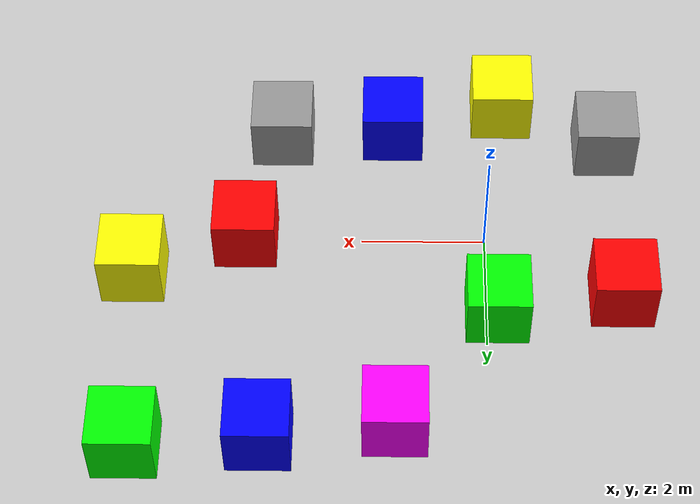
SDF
<sdf version="1.7">
 <world name="default">
  <light name="sun" type="directional">
   <pose>0 0 10 0 -0 0</pose>
   <diffuse>0.8 0.8 0.8 1</diffuse>
   <specular>0.2 0.2 0.2 1</specular>
   <attenuation>
    <range>1000</range>
    <constant>0.9</constant>
    <linear>0.01</linear>
    <quadratic>0.001</quadratic>
   </attenuation>
   <direction>-0.5 0.1 -0.9</direction>
   <spot><inner_angle>0</inner_angle><outer_angle>0</outer_angle><falloff>0</falloff></spot>
  </light>
  <model name="ground_plane">
   <static>1</static>
   <link name="link">
    <collision name="collision">
     <geometry><plane><normal>0 0 1</normal><size>100 100</size></plane></geometry>
     <surface><friction><ode><mu>100</mu><mu2>50</mu2></ode></friction></surface>
    </collision>
    <visual name="visual">
     <cast_shadows>0</cast_shadows>
     <geometry><plane><normal>0 0 1</normal><size>100 100</size></plane></geometry>
     <material>
      <script><uri>file://media/materials/scripts/gazebo.material</uri><name>Gazebo/Grey</name></script>
     </material>
    </visual>
   </link>
  </model>
  <gravity>0 0 -9.8</gravity>
  <magnetic_field>6e-06 2.3e-05 -4.2e-05</magnetic_field>
  <atmosphere type="adiabatic"/>
  <physics type="ode">
   <max_step_size>0.001</max_step_size>
   <real_time_factor>1</real_time_factor>
   <real_time_update_rate>1000</real_time_update_rate>
  </physics>
  <scene><ambient>0.4 0.4 0.4 1</ambient><background>0.7 0.7 0.7 1</background><shadows>1</shadows></scene>
  <audio><device>default</device></audio>
  <spherical_coordinates>
   <surface_model>EARTH_WGS84</surface_model>
   <latitude_deg>0</latitude_deg>
   <longitude_deg>0</longitude_deg>
   <elevation>0</elevation>
   <heading_deg>0</heading_deg>
  </spherical_coordinates>
  <model name="RedBox">
   <link name="link">
    <inertial>
     <mass>1</mass>
     <inertia>
      <ixx>0.166667</ixx>
      <ixy>0</ixy>
      <ixz>0</ixz>
      <iyy>0.166667</iyy>
      <iyz>0</iyz>
      <izz>0.166667</izz>
     </inertia>
    </inertial>
    <visual name="visual">
     <geometry><box><size>1 1 1</size></box></geometry>
     <material>
      <script><name>Gazebo/Grey</name><uri>file://media/materials/scripts/gazebo.material</uri></script>
      <shader type="pixel"><normal_map>__default__</normal_map></shader>
      <ambient>1 0 0 0</ambient>
      <diffuse>0.7 0.7 0.7 1</diffuse>
      <specular>0.01 0.01 0.01 1</specular>
      <emissive>0 0 0 1</emissive>
     </material>
    </visual>
    <collision name="collision">
     <geometry><box><size>1 1 1</size></box></geometry>
     <surface>
      <friction>
       <ode><mu>1</mu><mu2>1</mu2><fdir1>0 0 0</fdir1><slip1>0</slip1><slip2>0</slip2></ode>
       <torsional>
        <coefficient>1</coefficient>
        <patch_radius>0</patch_radius>
        <surface_radius>0</surface_radius>
        <use_patch_radius>1</use_patch_radius>
        <ode><slip>0</slip></ode>
       </torsional>
      </friction>
      <bounce><restitution_coefficient>0</restitution_coefficient><threshold>1e+06</threshold></bounce>
      <contact>
       <collide_without_contact>0</collide_without_contact>
       <collide_without_contact_bitmask>1</collide_without_contact_bitmask>
       <collide_bitmask>1</collide_bitmask>
       <ode>
        <soft_cfm>0</soft_cfm>
        <soft_erp>0.2</soft_erp>
        <kp>1e+13</kp>
        <kd>1</kd>
        <max_vel>0.01</max_vel>
        <min_depth>0</min_depth>
       </ode>
       <bullet>
        <split_impulse>1</split_impulse>
        <split_impulse_penetration_threshold>-0.01</split_impulse_penetration_threshold>
        <soft_cfm>0</soft_cfm>
        <soft_erp>0.2</soft_erp>
        <kp>1e+13</kp>
        <kd>1</kd>
       </bullet>
      </contact>
     </surface>
    </collision>
   </link>
   <static>0</static>
   <pose>3.87736 0.03104 0.5 0 -0 0</pose>
  </model>
  <model name="PurpleBox">
   <link name="link">
    <inertial>
     <mass>1</mass>
     <inertia>
      <ixx>0.166667</ixx>
      <ixy>0</ixy>
      <ixz>0</ixz>
      <iyy>0.166667</iyy>
      <iyz>0</iyz>
      <izz>0.166667</izz>
     </inertia>
    </inertial>
    <visual name="visual">
     <geometry><box><size>1 1 1</size></box></geometry>
     <material>
      <script><name>Gazebo/Grey</name><uri>file://media/materials/scripts/gazebo.material</uri></script>
      <shader type="pixel"><normal_map>__default__</normal_map></shader>
      <ambient>1 0 1 0</ambient>
      <diffuse>0.7 0.7 0.7 1</diffuse>
      <specular>0.01 0.01 0.01 1</specular>
      <emissive>0 0 0 1</emissive>
     </material>
    </visual>
    <collision name="collision">
     <geometry><box><size>1 1 1</size></box></geometry>
     <surface>
      <friction>
       <ode><mu>1</mu><mu2>1</mu2><fdir1>0 0 0</fdir1><slip1>0</slip1><slip2>0</slip2></ode>
       <torsional>
        <coefficient>1</coefficient>
        <patch_radius>0</patch_radius>
        <surface_radius>0</surface_radius>
        <use_patch_radius>1</use_patch_radius>
        <ode><slip>0</slip></ode>
       </torsional>
      </friction>
      <bounce><restitution_coefficient>0</restitution_coefficient><threshold>1e+06</threshold></bounce>
      <contact>
       <collide_without_contact>0</collide_without_contact>
       <collide_without_contact_bitmask>1</collide_without_contact_bitmask>
       <collide_bitmask>1</collide_bitmask>
       <ode>
        <soft_cfm>0</soft_cfm>
        <soft_erp>0.2</soft_erp>
        <kp>1e+13</kp>
        <kd>1</kd>
        <max_vel>0.01</max_vel>
        <min_depth>0</min_depth>
       </ode>
       <bullet>
        <split_impulse>1</split_impulse>
        <split_impulse_penetration_threshold>-0.01</split_impulse_penetration_threshold>
        <soft_cfm>0</soft_cfm>
        <soft_erp>0.2</soft_erp>
        <kp>1e+13</kp>
        <kd>1</kd>
       </bullet>
      </contact>
     </surface>
    </collision>
   </link>
   <static>0</static>
   <pose>1.44156 3.54463 0.5 0 -0 0</pose>
  </model>
  <model name="BlueBox">
   <link name="link">
    <inertial>
     <mass>1</mass>
     <inertia>
      <ixx>0.166667</ixx>
      <ixy>0</ixy>
      <ixz>0</ixz>
      <iyy>0.166667</iyy>
      <iyz>0</iyz>
      <izz>0.166667</izz>
     </inertia>
    </inertial>
    <visual name="visual">
     <geometry><box><size>1 1 1</size></box></geometry>
     <material>
      <script><name>Gazebo/Grey</name><uri>file://media/materials/scripts/gazebo.material</uri></script>
      <shader type="pixel"><normal_map>__default__</normal_map></shader>
      <ambient>0 0 1 0</ambient>
      <diffuse>0.7 0.7 0.7 1</diffuse>
      <specular>0.01 0.01 0.01 1</specular>
      <emissive>0 0 0 1</emissive>
     </material>
    </visual>
    <collision name="collision">
     <geometry><box><size>1 1 1</size></box></geometry>
     <surface>
      <friction>
       <ode><mu>1</mu><mu2>1</mu2><fdir1>0 0 0</fdir1><slip1>0</slip1><slip2>0</slip2></ode>
       <torsional>
        <coefficient>1</coefficient>
        <patch_radius>0</patch_radius>
        <surface_radius>0</surface_radius>
        <use_patch_radius>1</use_patch_radius>
        <ode><slip>0</slip></ode>
       </torsional>
      </friction>
      <bounce><restitution_coefficient>0</restitution_coefficient><threshold>1e+06</threshold></bounce>
      <contact>
       <collide_without_contact>0</collide_without_contact>
       <collide_without_contact_bitmask>1</collide_without_contact_bitmask>
       <collide_bitmask>1</collide_bitmask>
       <ode>
        <soft_cfm>0</soft_cfm>
        <soft_erp>0.2</soft_erp>
        <kp>1e+13</kp>
        <kd>1</kd>
        <max_vel>0.01</max_vel>
        <min_depth>0</min_depth>
       </ode>
       <bullet>
        <split_impulse>1</split_impulse>
        <split_impulse_penetration_threshold>-0.01</split_impulse_penetration_threshold>
        <soft_cfm>0</soft_cfm>
        <soft_erp>0.2</soft_erp>
        <kp>1e+13</kp>
        <kd>1</kd>
       </bullet>
      </contact>
     </surface>
    </collision>
   </link>
   <static>0</static>
   <pose>1.50624 -2.22154 0.5 0 -0 0</pose>
  </model>
  <model name="BlueBox_0">
   <link name="link">
    <inertial>
     <mass>1</mass>
     <inertia>
      <ixx>0.166667</ixx>
      <ixy>0</ixy>
      <ixz>0</ixz>
      <iyy>0.166667</iyy>
      <iyz>0</iyz>
      <izz>0.166667</izz>
     </inertia>
    </inertial>
    <visual name="visual">
     <geometry><box><size>1 1 1</size></box></geometry>
     <material>
      <script><name>Gazebo/Grey</name><uri>file://media/materials/scripts/gazebo.material</uri></script>
      <shader type="pixel"><normal_map>__default__</normal_map></shader>
      <ambient>0 0 1 0</ambient>
      <diffuse>0.7 0.7 0.7 1</diffuse>
      <specular>0.01 0.01 0.01 1</specular>
      <emissive>0 0 0 1</emissive>
     </material>
    </visual>
    <collision name="collision">
     <geometry><box><size>1 1 1</size></box></geometry>
     <surface>
      <friction>
       <ode><mu>1</mu><mu2>1</mu2><fdir1>0 0 0</fdir1><slip1>0</slip1><slip2>0</slip2></ode>
       <torsional>
        <coefficient>1</coefficient>
        <patch_radius>0</patch_radius>
        <surface_radius>0</surface_radius>
        <use_patch_radius>1</use_patch_radius>
        <ode><slip>0</slip></ode>
       </torsional>
      </friction>
      <bounce><restitution_coefficient>0</restitution_coefficient><threshold>1e+06</threshold></bounce>
      <contact>
       <collide_without_contact>0</collide_without_contact>
       <collide_without_contact_bitmask>1</collide_without_contact_bitmask>
       <collide_bitmask>1</collide_bitmask>
       <ode>
        <soft_cfm>0</soft_cfm>
        <soft_erp>0.2</soft_erp>
        <kp>1e+13</kp>
        <kd>1</kd>
        <max_vel>0.01</max_vel>
        <min_depth>0</min_depth>
       </ode>
       <bullet>
        <split_impulse>1</split_impulse>
        <split_impulse_penetration_threshold>-0.01</split_impulse_penetration_threshold>
        <soft_cfm>0</soft_cfm>
        <soft_erp>0.2</soft_erp>
        <kp>1e+13</kp>
        <kd>1</kd>
       </bullet>
      </contact>
     </surface>
    </collision>
   </link>
   <static>0</static>
   <pose>3.49991 3.8033 0.5 0 -0 0</pose>
  </model>
  <model name="GreenBox">
   <link name="link">
    <inertial>
     <mass>1</mass>
     <inertia>
      <ixx>0.166667</ixx>
      <ixy>0</ixy>
      <ixz>0</ixz>
      <iyy>0.166667</iyy>
      <iyz>0</iyz>
      <izz>0.166667</izz>
     </inertia>
    </inertial>
    <visual name="visual">
     <geometry><box><size>1 1 1</size></box></geometry>
     <material>
      <script><name>Gazebo/Grey</name><uri>file://media/materials/scripts/gazebo.material</uri></script>
      <shader type="pixel"><normal_map>__default__</normal_map></shader>
      <ambient>0 1 0 0</ambient>
      <diffuse>0.7 0.7 0.7 1</diffuse>
      <specular>0.01 0.01 0.01 1</specular>
      <emissive>0 0 0 1</emissive>
     </material>
    </visual>
    <collision name="collision">
     <geometry><box><size>1 1 1</size></box></geometry>
     <surface>
      <friction>
       <ode><mu>1</mu><mu2>1</mu2><fdir1>0 0 0</fdir1><slip1>0</slip1><slip2>0</slip2></ode>
       <torsional>
        <coefficient>1</coefficient>
        <patch_radius>0</patch_radius>
        <surface_radius>0</surface_radius>
        <use_patch_radius>1</use_patch_radius>
        <ode><slip>0</slip></ode>
       </torsional>
      </friction>
      <bounce><restitution_coefficient>0</restitution_coefficient><threshold>1e+06</threshold></bounce>
      <contact>
       <collide_without_contact>0</collide_without_contact>
       <collide_without_contact_bitmask>1</collide_without_contact_bitmask>
       <collide_bitmask>1</collide_bitmask>
       <ode>
        <soft_cfm>0</soft_cfm>
        <soft_erp>0.2</soft_erp>
        <kp>1e+13</kp>
        <kd>1</kd>
        <max_vel>0.01</max_vel>
        <min_depth>0</min_depth>
       </ode>
       <bullet>
        <split_impulse>1</split_impulse>
        <split_impulse_penetration_threshold>-0.01</split_impulse_penetration_threshold>
        <soft_cfm>0</soft_cfm>
        <soft_erp>0.2</soft_erp>
        <kp>1e+13</kp>
        <kd>1</kd>
       </bullet>
      </contact>
     </surface>
    </collision>
   </link>
   <static>0</static>
   <pose>-0.164603 1.4645 0.5 0 -0 0</pose>
  </model>
  <model name="WhiteBox">
   <link name="link">
    <inertial>
     <mass>1</mass>
     <inertia>
      <ixx>0.166667</ixx>
      <ixy>0</ixy>
      <ixz>0</ixz>
      <iyy>0.166667</iyy>
      <iyz>0</iyz>
      <izz>0.166667</izz>
     </inertia>
    </inertial>
    <visual name="visual">
     <geometry><box><size>1 1 1</size></box></geometry>
     <material>
      <script><name>Gazebo/Grey</name><uri>file://media/materials/scripts/gazebo.material</uri></script>
      <shader type="pixel"><normal_map>__default__</normal_map></shader>
      <ambient>1 1 1 0</ambient>
      <diffuse>0.7 0.7 0.7 1</diffuse>
      <specular>0.01 0.01 0.01 1</specular>
      <emissive>0 0 0 1</emissive>
     </material>
    </visual>
    <collision name="collision">
     <geometry><box><size>1 1 1</size></box></geometry>
     <surface>
      <friction>
       <ode><mu>1</mu><mu2>1</mu2><fdir1>0 0 0</fdir1><slip1>0</slip1><slip2>0</slip2></ode>
       <torsional>
        <coefficient>1</coefficient>
        <patch_radius>0</patch_radius>
        <surface_radius>0</surface_radius>
        <use_patch_radius>1</use_patch_radius>
        <ode><slip>0</slip></ode>
       </torsional>
      </friction>
      <bounce><restitution_coefficient>0</restitution_coefficient><threshold>1e+06</threshold></bounce>
      <contact>
       <collide_without_contact>0</collide_without_contact>
       <collide_without_contact_bitmask>1</collide_without_contact_bitmask>
       <collide_bitmask>1</collide_bitmask>
       <ode>
        <soft_cfm>0</soft_cfm>
        <soft_erp>0.2</soft_erp>
        <kp>1e+13</kp>
        <kd>1</kd>
        <max_vel>0.01</max_vel>
        <min_depth>0</min_depth>
       </ode>
       <bullet>
        <split_impulse>1</split_impulse>
        <split_impulse_penetration_threshold>-0.01</split_impulse_penetration_threshold>
        <soft_cfm>0</soft_cfm>
        <soft_erp>0.2</soft_erp>
        <kp>1e+13</kp>
        <kd>1</kd>
       </bullet>
      </contact>
     </surface>
    </collision>
   </link>
   <static>0</static>
   <pose>3.34948 -2.10322 0.5 0 -0 0</pose>
  </model>
  <model name="YellowBox">
   <link name="link">
    <inertial>
     <mass>1</mass>
     <inertia>
      <ixx>0.166667</ixx>
      <ixy>0</ixy>
      <ixz>0</ixz>
      <iyy>0.166667</iyy>
      <iyz>0</iyz>
      <izz>0.166667</izz>
     </inertia>
    </inertial>
    <visual name="visual">
     <geometry><box><size>1 1 1</size></box></geometry>
     <material>
      <script><name>Gazebo/Grey</name><uri>file://media/materials/scripts/gazebo.material</uri></script>
      <shader type="pixel"><normal_map>__default__</normal_map></shader>
      <ambient>1 1 0 0</ambient>
      <diffuse>0.7 0.7 0.7 1</diffuse>
      <specular>0.01 0.01 0.01 1</specular>
      <emissive>0 0 0 1</emissive>
     </material>
    </visual>
    <collision name="collision">
     <geometry><box><size>1 1 1</size></box></geometry>
     <surface>
      <friction>
       <ode><mu>1</mu><mu2>1</mu2><fdir1>0 0 0</fdir1><slip1>0</slip1><slip2>0</slip2></ode>
       <torsional>
        <coefficient>1</coefficient>
        <patch_radius>0</patch_radius>
        <surface_radius>0</surface_radius>
        <use_patch_radius>1</use_patch_radius>
        <ode><slip>0</slip></ode>
       </torsional>
      </friction>
      <bounce><restitution_coefficient>0</restitution_coefficient><threshold>1e+06</threshold></bounce>
      <contact>
       <collide_without_contact>0</collide_without_contact>
       <collide_without_contact_bitmask>1</collide_without_contact_bitmask>
       <collide_bitmask>1</collide_bitmask>
       <ode>
        <soft_cfm>0</soft_cfm>
        <soft_erp>0.2</soft_erp>
        <kp>1e+13</kp>
        <kd>1</kd>
        <max_vel>0.01</max_vel>
        <min_depth>0</min_depth>
       </ode>
       <bullet>
        <split_impulse>1</split_impulse>
        <split_impulse_penetration_threshold>-0.01</split_impulse_penetration_threshold>
        <soft_cfm>0</soft_cfm>
        <soft_erp>0.2</soft_erp>
        <kp>1e+13</kp>
        <kd>1</kd>
       </bullet>
      </contact>
     </surface>
    </collision>
   </link>
   <static>0</static>
   <pose>5.64518 0.731362 0.5 0 -0 0</pose>
  </model>
  <model name="GreenBox_0">
   <link name="link">
    <inertial>
     <mass>1</mass>
     <inertia>
      <ixx>0.166667</ixx>
      <ixy>0</ixy>
      <ixz>0</ixz>
      <iyy>0.166667</iyy>
      <iyz>0</iyz>
      <izz>0.166667</izz>
     </inertia>
    </inertial>
    <visual name="visual">
     <geometry><box><size>1 1 1</size></box></geometry>
     <material>
      <script><name>Gazebo/Grey</name><uri>file://media/materials/scripts/gazebo.material</uri></script>
      <shader type="pixel"><normal_map>__default__</normal_map></shader>
      <ambient>0 1 0 0</ambient>
      <diffuse>0.7 0.7 0.7 1</diffuse>
      <specular>0.01 0.01 0.01 1</specular>
      <emissive>0 0 0 1</emissive>
     </material>
    </visual>
    <collision name="collision">
     <geometry><box><size>1 1 1</size></box></geometry>
     <surface>
      <friction>
       <ode><mu>1</mu><mu2>1</mu2><fdir1>0 0 0</fdir1><slip1>0</slip1><slip2>0</slip2></ode>
       <torsional>
        <coefficient>1</coefficient>
        <patch_radius>0</patch_radius>
        <surface_radius>0</surface_radius>
        <use_patch_radius>1</use_patch_radius>
        <ode><slip>0</slip></ode>
       </torsional>
      </friction>
      <bounce><restitution_coefficient>0</restitution_coefficient><threshold>1e+06</threshold></bounce>
      <contact>
       <collide_without_contact>0</collide_without_contact>
       <collide_without_contact_bitmask>1</collide_without_contact_bitmask>
       <collide_bitmask>1</collide_bitmask>
       <ode>
        <soft_cfm>0</soft_cfm>
        <soft_erp>0.2</soft_erp>
        <kp>1e+13</kp>
        <kd>1</kd>
        <max_vel>0.01</max_vel>
        <min_depth>0</min_depth>
       </ode>
       <bullet>
        <split_impulse>1</split_impulse>
        <split_impulse_penetration_threshold>-0.01</split_impulse_penetration_threshold>
        <soft_cfm>0</soft_cfm>
        <soft_erp>0.2</soft_erp>
        <kp>1e+13</kp>
        <kd>1</kd>
       </bullet>
      </contact>
     </surface>
    </collision>
   </link>
   <static>0</static>
   <pose>5.50505 3.95396 0.5 0 -0 0</pose>
  </model>
  <model name="WhiteBox_0">
   <link name="link">
    <inertial>
     <mass>1</mass>
     <inertia>
      <ixx>0.166667</ixx>
      <ixy>0</ixy>
      <ixz>0</ixz>
      <iyy>0.166667</iyy>
      <iyz>0</iyz>
      <izz>0.166667</izz>
     </inertia>
    </inertial>
    <visual name="visual">
     <geometry><box><size>1 1 1</size></box></geometry>
     <material>
      <script><name>Gazebo/Grey</name><uri>file://media/materials/scripts/gazebo.material</uri></script>
      <shader type="pixel"><normal_map>__default__</normal_map></shader>
      <ambient>1 1 1 0</ambient>
      <diffuse>0.7 0.7 0.7 1</diffuse>
      <specular>0.01 0.01 0.01 1</specular>
      <emissive>0 0 0 1</emissive>
     </material>
    </visual>
    <collision name="collision">
     <geometry><box><size>1 1 1</size></box></geometry>
     <surface>
      <friction>
       <ode><mu>1</mu><mu2>1</mu2><fdir1>0 0 0</fdir1><slip1>0</slip1><slip2>0</slip2></ode>
       <torsional>
        <coefficient>1</coefficient>
        <patch_radius>0</patch_radius>
        <surface_radius>0</surface_radius>
        <use_patch_radius>1</use_patch_radius>
        <ode><slip>0</slip></ode>
       </torsional>
      </friction>
      <bounce><restitution_coefficient>0</restitution_coefficient><threshold>1e+06</threshold></bounce>
      <contact>
       <collide_without_contact>0</collide_without_contact>
       <collide_without_contact_bitmask>1</collide_without_contact_bitmask>
       <collide_bitmask>1</collide_bitmask>
       <ode>
        <soft_cfm>0</soft_cfm>
        <soft_erp>0.2</soft_erp>
        <kp>1e+13</kp>
        <kd>1</kd>
        <max_vel>0.01</max_vel>
        <min_depth>0</min_depth>
       </ode>
       <bullet>
        <split_impulse>1</split_impulse>
        <split_impulse_penetration_threshold>-0.01</split_impulse_penetration_threshold>
        <soft_cfm>0</soft_cfm>
        <soft_erp>0.2</soft_erp>
        <kp>1e+13</kp>
        <kd>1</kd>
       </bullet>
      </contact>
     </surface>
    </collision>
   </link>
   <static>0</static>
   <pose>-2.03949 -1.93077 0.5 0 -0 0</pose>
  </model>
  <model name="RedBox_0">
   <link name="link">
    <inertial>
     <mass>1</mass>
     <inertia>
      <ixx>0.166667</ixx>
      <ixy>0</ixy>
      <ixz>0</ixz>
      <iyy>0.166667</iyy>
      <iyz>0</iyz>
      <izz>0.166667</izz>
     </inertia>
    </inertial>
    <visual name="visual">
     <geometry><box><size>1 1 1</size></box></geometry>
     <material>
      <script><name>Gazebo/Grey</name><uri>file://media/materials/scripts/gazebo.material</uri></script>
      <shader type="pixel"><normal_map>__default__</normal_map></shader>
      <ambient>1 0 0 0</ambient>
      <diffuse>0.7 0.7 0.7 1</diffuse>
      <specular>0.01 0.01 0.01 1</specular>
      <emissive>0 0 0 1</emissive>
     </material>
    </visual>
    <collision name="collision">
     <geometry><box><size>1 1 1</size></box></geometry>
     <surface>
      <friction>
       <ode><mu>1</mu><mu2>1</mu2><fdir1>0 0 0</fdir1><slip1>0</slip1><slip2>0</slip2></ode>
       <torsional>
        <coefficient>1</coefficient>
        <patch_radius>0</patch_radius>
        <surface_radius>0</surface_radius>
        <use_patch_radius>1</use_patch_radius>
        <ode><slip>0</slip></ode>
       </torsional>
      </friction>
      <bounce><restitution_coefficient>0</restitution_coefficient><threshold>1e+06</threshold></bounce>
      <contact>
       <collide_without_contact>0</collide_without_contact>
       <collide_without_contact_bitmask>1</collide_without_contact_bitmask>
       <collide_bitmask>1</collide_bitmask>
       <ode>
        <soft_cfm>0</soft_cfm>
        <soft_erp>0.2</soft_erp>
        <kp>1e+13</kp>
        <kd>1</kd>
        <max_vel>0.01</max_vel>
        <min_depth>0</min_depth>
       </ode>
       <bullet>
        <split_impulse>1</split_impulse>
        <split_impulse_penetration_threshold>-0.01</split_impulse_penetration_threshold>
        <soft_cfm>0</soft_cfm>
        <soft_erp>0.2</soft_erp>
        <kp>1e+13</kp>
        <kd>1</kd>
       </bullet>
      </contact>
     </surface>
    </collision>
   </link>
   <static>0</static>
   <pose>-2.15805 1.14101 0.5 0 -0 0</pose>
  </model>
  <model name="YellowBox_0">
   <link name="link">
    <inertial>
     <mass>1</mass>
     <inertia>
      <ixx>0.166667</ixx>
      <ixy>0</ixy>
      <ixz>0</ixz>
      <iyy>0.166667</iyy>
      <iyz>0</iyz>
      <izz>0.166667</izz>
     </inertia>
    </inertial>
    <visual name="visual">
     <geometry><box><size>1 1 1</size></box></geometry>
     <material>
      <script><name>Gazebo/Grey</name><uri>file://media/materials/scripts/gazebo.material</uri></script>
      <shader type="pixel"><normal_map>__default__</normal_map></shader>
      <ambient>1 1 0 0</ambient>
      <diffuse>0.7 0.7 0.7 1</diffuse>
      <specular>0.01 0.01 0.01 1</specular>
      <emissive>0 0 0 1</emissive>
     </material>
    </visual>
    <collision name="collision">
     <geometry><box><size>1 1 1</size></box></geometry>
     <surface>
      <friction>
       <ode><mu>1</mu><mu2>1</mu2><fdir1>0 0 0</fdir1><slip1>0</slip1><slip2>0</slip2></ode>
       <torsional>
        <coefficient>1</coefficient>
        <patch_radius>0</patch_radius>
        <surface_radius>0</surface_radius>
        <use_patch_radius>1</use_patch_radius>
        <ode><slip>0</slip></ode>
       </torsional>
      </friction>
      <bounce><restitution_coefficient>0</restitution_coefficient><threshold>1e+06</threshold></bounce>
      <contact>
       <collide_without_contact>0</collide_without_contact>
       <collide_without_contact_bitmask>1</collide_without_contact_bitmask>
       <collide_bitmask>1</collide_bitmask>
       <ode>
        <soft_cfm>0</soft_cfm>
        <soft_erp>0.2</soft_erp>
        <kp>1e+13</kp>
        <kd>1</kd>
        <max_vel>0.01</max_vel>
        <min_depth>0</min_depth>
       </ode>
       <bullet>
        <split_impulse>1</split_impulse>
        <split_impulse_penetration_threshold>-0.01</split_impulse_penetration_threshold>
        <soft_cfm>0</soft_cfm>
        <soft_erp>0.2</soft_erp>
        <kp>1e+13</kp>
        <kd>1</kd>
       </bullet>
      </contact>
     </surface>
    </collision>
   </link>
   <static>0</static>
   <pose>-0.325824 -2.72825 0.5 0 -0 0</pose>
  </model>
 </world>
</sdf>
